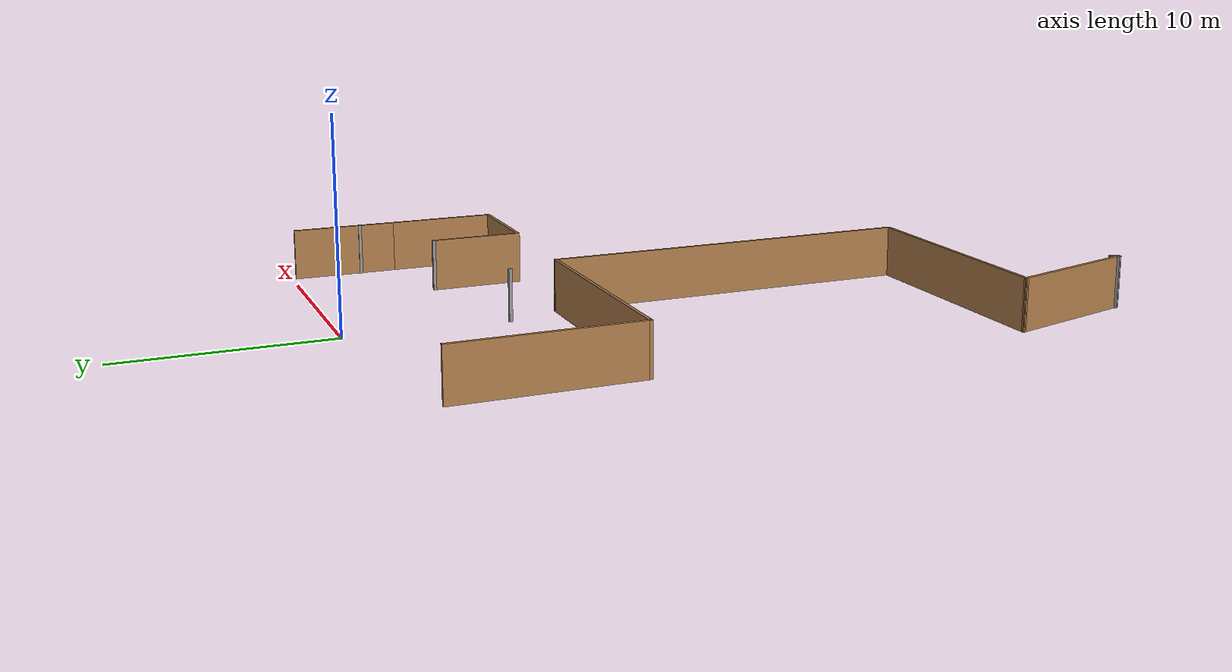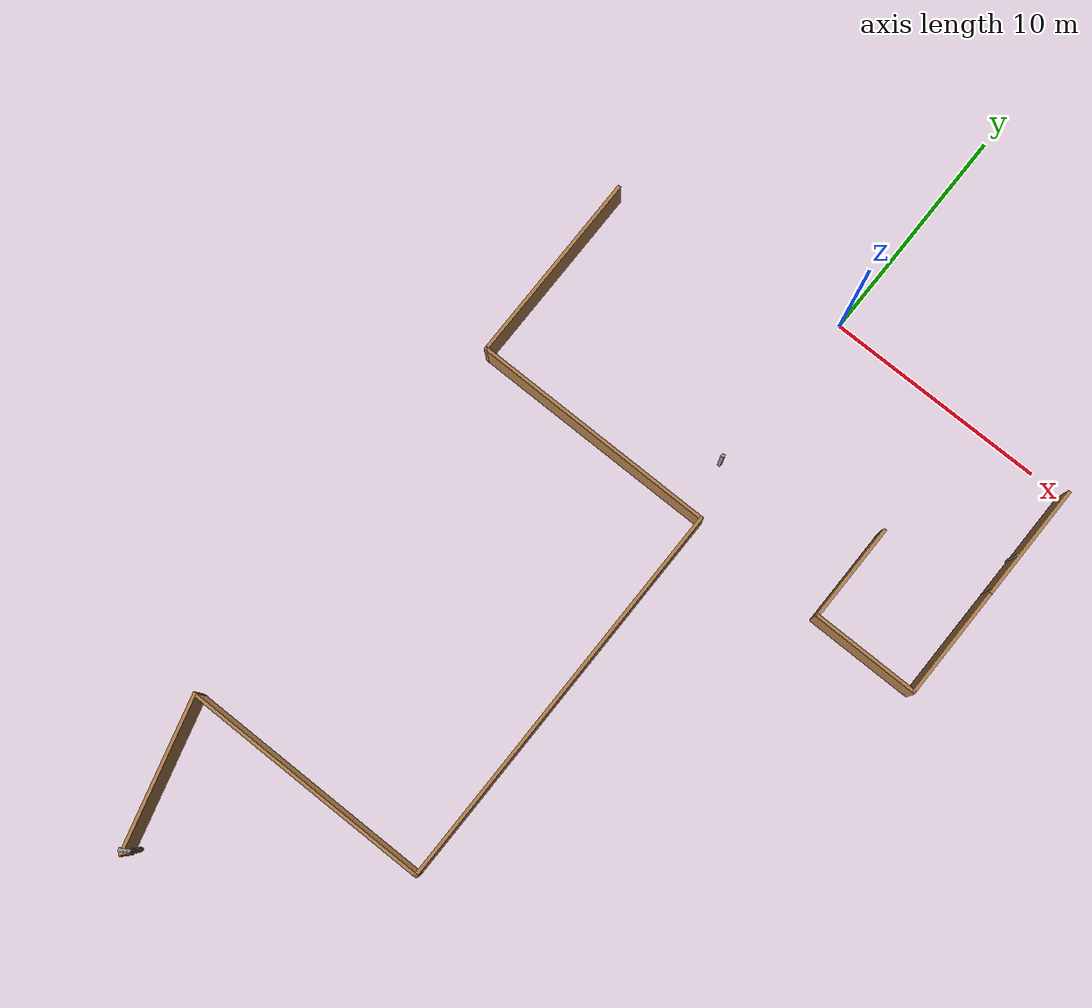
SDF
<?xml version='1.0'?>
<sdf version='1.7'>
  <model name='industrial_environment_trial.world'>
    <pose>0.344289 -17.551 0 0 -0 0</pose>
    <link name='Wall_13'>
      <collision name='Wall_13_Collision'>
        <geometry>
          <box>
            <size>0.16 0.15 2.5</size>
          </box>
        </geometry>
        <pose>0 0 1.25 0 -0 0</pose>
      </collision>
      <visual name='Wall_13_Visual'>
        <pose>0 0 1.25 0 -0 0</pose>
        <geometry>
          <box>
            <size>0.16 0.15 2.5</size>
          </box>
        </geometry>
        <material>
          <script>
            <uri>file://media/materials/scripts/gazebo.material</uri>
            <name>Gazebo/Grey</name>
          </script>
          <ambient>1 1 1 1</ambient>
        </material>
        <meta>
          <layer>0</layer>
        </meta>
      </visual>
      <pose>11.0957 14.0325 0 0 -0 0</pose>
    </link>
    <link name='Wall_15'>
      <collision name='Wall_15_Collision'>
        <geometry>
          <box>
            <size>0.16 0.15 2.5</size>
          </box>
        </geometry>
        <pose>0 0 1.25 0 -0 0</pose>
      </collision>
      <visual name='Wall_15_Visual'>
        <pose>0 0 1.25 0 -0 0</pose>
        <geometry>
          <box>
            <size>0.16 0.15 2.5</size>
          </box>
        </geometry>
        <material>
          <script>
            <uri>file://media/materials/scripts/gazebo.material</uri>
            <name>Gazebo/Grey</name>
          </script>
          <ambient>1 1 1 1</ambient>
        </material>
        <meta>
          <layer>0</layer>
        </meta>
      </visual>
      <pose>6.28168 11.452 0 0 -0 0</pose>
    </link>
    <link name='Wall_16'>
      <collision name='Wall_16_Collision'>
        <geometry>
          <box>
            <size>4.5 0.15 2.5</size>
          </box>
        </geometry>
        <pose>0 0 1.25 0 -0 0</pose>
      </collision>
      <visual name='Wall_16_Visual'>
        <pose>0 0 1.25 0 -0 0</pose>
        <geometry>
          <box>
            <size>4.5 0.15 2.5</size>
          </box>
        </geometry>
        <material>
          <script>
            <uri>file://media/materials/scripts/gazebo.material</uri>
            <name>Gazebo/Wood</name>
          </script>
          <ambient>1 1 1 1</ambient>
        </material>
        <meta>
          <layer>0</layer>
        </meta>
      </visual>
      <pose>6.28668 9.27704 0 0 -0 -1.5708</pose>
    </link>
    <link name='Wall_17'>
      <collision name='Wall_17_Collision'>
        <geometry>
          <box>
            <size>5 0.15 2.5</size>
          </box>
        </geometry>
        <pose>0 0 1.25 0 -0 0</pose>
      </collision>
      <visual name='Wall_17_Visual'>
        <pose>0 0 1.25 0 -0 0</pose>
        <geometry>
          <box>
            <size>5 0.15 2.5</size>
          </box>
        </geometry>
        <material>
          <script>
            <uri>file://media/materials/scripts/gazebo.material</uri>
            <name>Gazebo/Wood</name>
          </script>
          <ambient>1 1 1 1</ambient>
        </material>
        <meta>
          <layer>0</layer>
        </meta>
      </visual>
      <pose>8.71168 7.10204 0 0 -0 0</pose>
    </link>
    <link name='Wall_18'>
      <collision name='Wall_18_Collision'>
        <geometry>
          <box>
            <size>5.25 0.15 2.5</size>
          </box>
        </geometry>
        <pose>0 0 1.25 0 -0 0</pose>
      </collision>
      <visual name='Wall_18_Visual'>
        <pose>0 0 1.25 0 -0 0</pose>
        <geometry>
          <box>
            <size>5.25 0.15 2.5</size>
          </box>
        </geometry>
        <material>
          <script>
            <uri>file://media/materials/scripts/gazebo.material</uri>
            <name>Gazebo/Wood</name>
          </script>
          <ambient>1 1 1 1</ambient>
        </material>
        <meta>
          <layer>0</layer>
        </meta>
      </visual>
      <pose>11.1367 9.65204 0 0 -0 1.5708</pose>
    </link>
    <link name='Wall_19'>
      <collision name='Wall_19_Collision'>
        <geometry>
          <box>
            <size>5.25 0.15 2.5</size>
          </box>
        </geometry>
        <pose>0 0 1.25 0 -0 0</pose>
      </collision>
      <visual name='Wall_19_Visual'>
        <pose>0 0 1.25 0 -0 0</pose>
        <geometry>
          <box>
            <size>5.25 0.15 2.5</size>
          </box>
        </geometry>
        <material>
          <script>
            <uri>file://media/materials/scripts/gazebo.material</uri>
            <name>Gazebo/Wood</name>
          </script>
          <ambient>1 1 1 1</ambient>
        </material>
        <meta>
          <layer>0</layer>
        </meta>
      </visual>
      <pose>11.1367 14.752 0 0 -0 1.5708</pose>
    </link>
    <link name='Wall_20'>
      <collision name='Wall_20_Collision'>
        <geometry>
          <box>
            <size>0.15 0.15 2.5</size>
          </box>
        </geometry>
        <pose>0 0 1.25 0 -0 0</pose>
      </collision>
      <visual name='Wall_20_Visual'>
        <pose>0 0 1.25 0 -0 0</pose>
        <geometry>
          <box>
            <size>0.15 0.15 2.5</size>
          </box>
        </geometry>
        <material>
          <script>
            <uri>file://media/materials/scripts/gazebo.material</uri>
            <name>Gazebo/Grey</name>
          </script>
          <ambient>1 1 1 1</ambient>
        </material>
        <meta>
          <layer>0</layer>
        </meta>
      </visual>
      <pose>11.1367 17.302 0 0 -0 0</pose>
    </link>
    <link name='Wall_28'>
      <collision name='Wall_28_Collision'>
        <geometry>
          <box>
            <size>8.75 0.15 2.5</size>
          </box>
        </geometry>
        <pose>0 0 1.25 0 -0 0</pose>
      </collision>
      <visual name='Wall_28_Visual'>
        <pose>0 0 1.25 0 -0 0</pose>
        <geometry>
          <box>
            <size>8.75 0.15 2.5</size>
          </box>
        </geometry>
        <material>
          <script>
            <uri>file://media/materials/scripts/gazebo.material</uri>
            <name>Gazebo/Wood</name>
          </script>
          <ambient>1 1 1 1</ambient>
        </material>
        <meta>
          <layer>0</layer>
        </meta>
      </visual>
      <pose>-10.8698 11.568 0 0 -0 -1.5708</pose>
    </link>
    <link name='Wall_29'>
      <collision name='Wall_29_Collision'>
        <geometry>
          <box>
            <size>11.25 0.15 2.5</size>
          </box>
        </geometry>
        <pose>0 0 1.25 0 -0 0</pose>
      </collision>
      <visual name='Wall_29_Visual'>
        <pose>0 0 1.25 0 -0 0</pose>
        <geometry>
          <box>
            <size>11.25 0.15 2.5</size>
          </box>
        </geometry>
        <material>
          <script>
            <uri>file://media/materials/scripts/gazebo.material</uri>
            <name>Gazebo/Wood</name>
          </script>
          <ambient>1 1 1 1</ambient>
        </material>
        <meta>
          <layer>0</layer>
        </meta>
      </visual>
      <pose>-5.31982 7.26804 0 0 -0 0</pose>
    </link>
    <link name='Wall_3'>
      <collision name='Wall_3_Collision'>
        <geometry>
          <box>
            <size>0.15 0.15 2.5</size>
          </box>
        </geometry>
        <pose>0 0 1.25 0 -0 0</pose>
      </collision>
      <visual name='Wall_3_Visual'>
        <pose>0 0 1.25 0 -0 0</pose>
        <geometry>
          <box>
            <size>0.15 0.15 2.5</size>
          </box>
        </geometry>
        <material>
          <script>
            <uri>file://media/materials/scripts/gazebo.material</uri>
            <name>Gazebo/Grey</name>
          </script>
          <ambient>1 1 1 1</ambient>
        </material>
        <meta>
          <layer>0</layer>
        </meta>
      </visual>
      <pose>-0.654289 9.811 0 0 -0 0</pose>
    </link>
    <link name='Wall_30'>
      <collision name='Wall_30_Collision'>
        <geometry>
          <box>
            <size>18.25 0.15 2.5</size>
          </box>
        </geometry>
        <pose>0 0 1.25 0 -0 0</pose>
      </collision>
      <visual name='Wall_30_Visual'>
        <pose>0 0 1.25 0 -0 0</pose>
        <geometry>
          <box>
            <size>18.25 0.15 2.5</size>
          </box>
        </geometry>
        <material>
          <script>
            <uri>file://media/materials/scripts/gazebo.material</uri>
            <name>Gazebo/Wood</name>
          </script>
          <ambient>1 1 1 1</ambient>
        </material>
        <meta>
          <layer>0</layer>
        </meta>
      </visual>
      <pose>0.230177 -1.78196 0 0 -0 -1.5708</pose>
    </link>
    <link name='Wall_31'>
      <collision name='Wall_31_Collision'>
        <geometry>
          <box>
            <size>11.5 0.15 2.5</size>
          </box>
        </geometry>
        <pose>0 0 1.25 0 -0 0</pose>
      </collision>
      <visual name='Wall_31_Visual'>
        <pose>0 0 1.25 0 -0 0</pose>
        <geometry>
          <box>
            <size>11.5 0.15 2.5</size>
          </box>
        </geometry>
        <material>
          <script>
            <uri>file://media/materials/scripts/gazebo.material</uri>
            <name>Gazebo/Wood</name>
          </script>
          <ambient>1 1 1 1</ambient>
        </material>
        <meta>
          <layer>0</layer>
        </meta>
      </visual>
      <pose>-5.44482 -10.832 0 0 -0 3.14159</pose>
    </link>
    <link name='Wall_32'>
      <collision name='Wall_32_Collision'>
        <geometry>
          <box>
            <size>7 0.15 2.5</size>
          </box>
        </geometry>
        <pose>0 0 1.25 0 -0 0</pose>
      </collision>
      <visual name='Wall_32_Visual'>
        <pose>0 0 1.25 0 -0 0</pose>
        <geometry>
          <box>
            <size>7 0.15 2.5</size>
          </box>
        </geometry>
        <material>
          <script>
            <uri>file://media/materials/scripts/gazebo.material</uri>
            <name>Gazebo/Wood</name>
          </script>
          <ambient>1 1 1 1</ambient>
        </material>
        <meta>
          <layer>0</layer>
        </meta>
      </visual>
      <pose>-10.2334 -14.1403 0 0 -0 -1.309</pose>
    </link>
    <link name='Wall_33'>
      <collision name='Wall_33_Collision'>
        <geometry>
          <box>
            <size>0.5 0.15 2.5</size>
          </box>
        </geometry>
        <pose>0 0 1.25 0 -0 0</pose>
      </collision>
      <visual name='Wall_33_Visual'>
        <pose>0 0 1.25 0 -0 0</pose>
        <geometry>
          <box>
            <size>0.5 0.15 2.5</size>
          </box>
        </geometry>
        <material>
          <script>
            <uri>file://media/materials/scripts/gazebo.material</uri>
            <name>Gazebo/Wood</name>
          </script>
          <ambient>1 1 1 1</ambient>
        </material>
        <meta>
          <layer>0</layer>
        </meta>
      </visual>
      <pose>-9.25941 -17.297 0 0 -0 1.0472</pose>
    </link>
    <link name='Wall_34'>
      <collision name='Wall_34_Collision'>
        <geometry>
          <box>
            <size>0.15 0.15 2.5</size>
          </box>
        </geometry>
        <pose>0 0 1.25 0 -0 0</pose>
      </collision>
      <visual name='Wall_34_Visual'>
        <pose>0 0 1.25 0 -0 0</pose>
        <geometry>
          <box>
            <size>0.15 0.15 2.5</size>
          </box>
        </geometry>
        <material>
          <script>
            <uri>file://media/materials/scripts/gazebo.material</uri>
            <name>Gazebo/Grey</name>
          </script>
          <ambient>1 1 1 1</ambient>
        </material>
        <meta>
          <layer>0</layer>
        </meta>
      </visual>
      <pose>-9.17191 -17.1454 0 0 -0 0</pose>
    </link>
    <link name='Wall_35'>
      <collision name='Wall_35_Collision'>
        <geometry>
          <box>
            <size>0.5 0.15 2.5</size>
          </box>
        </geometry>
        <pose>0 0 1.25 0 -0 0</pose>
      </collision>
      <visual name='Wall_35_Visual'>
        <pose>0 0 1.25 0 -0 0</pose>
        <geometry>
          <box>
            <size>0.5 0.15 2.5</size>
          </box>
        </geometry>
        <material>
          <script>
            <uri>file://media/materials/scripts/gazebo.material</uri>
            <name>Gazebo/Grey</name>
          </script>
          <ambient>1 1 1 1</ambient>
        </material>
        <meta>
          <layer>0</layer>
        </meta>
      </visual>
      <pose>-9.32347 -17.2329 0 0 -0 -2.61799</pose>
    </link>
    <static>1</static>
  </model>
</sdf>
